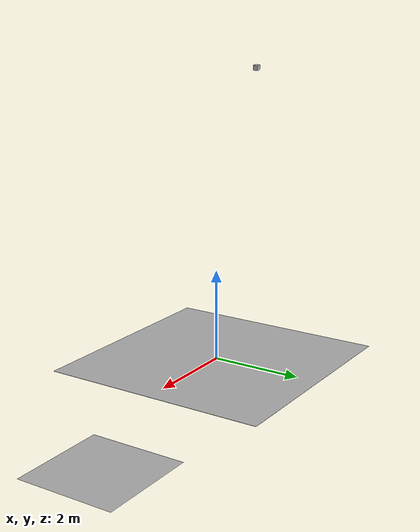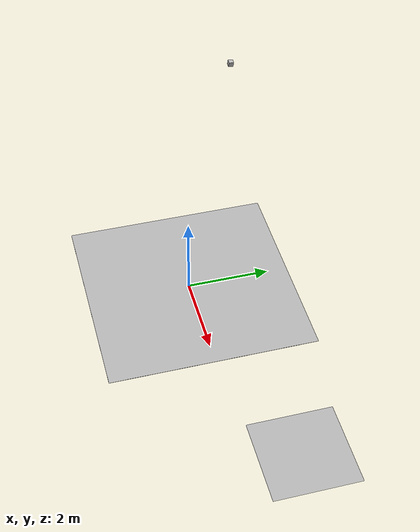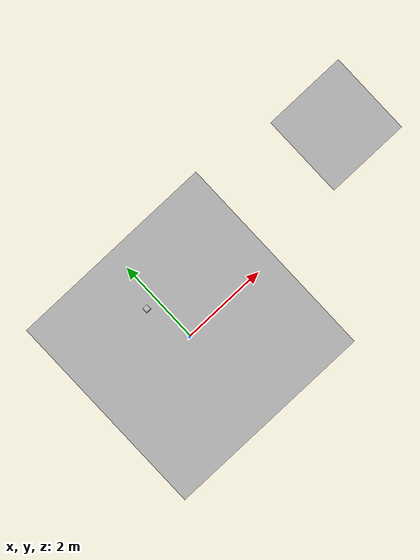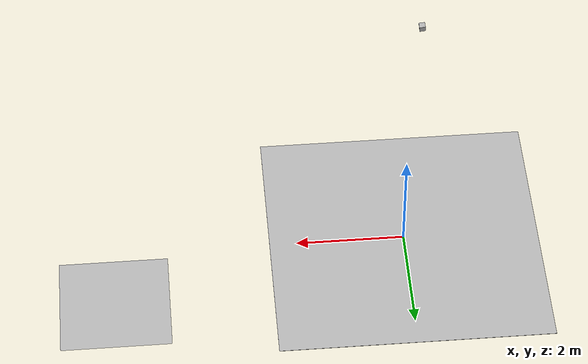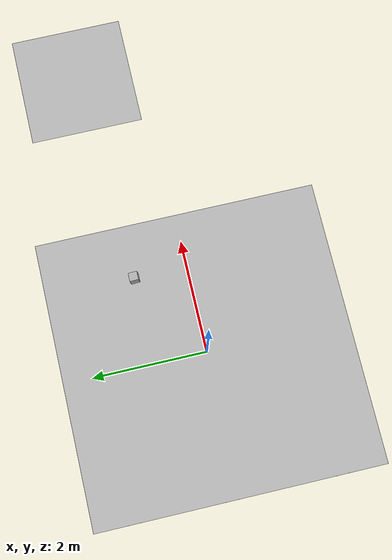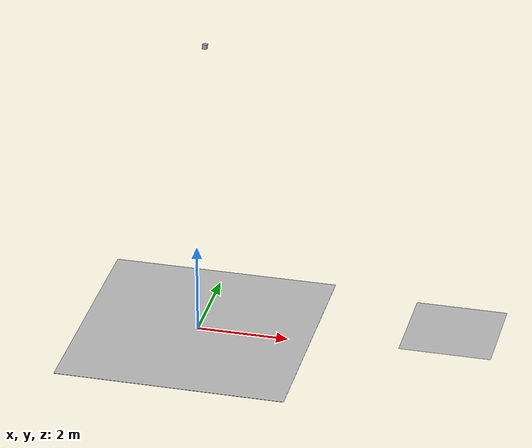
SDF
<sdf version="1.7">
 <world name="default">
  <light name="sun" type="directional">
   <pose>0 0 10 0 -0 0</pose>
   <diffuse>0.8 0.8 0.8 1</diffuse>
   <specular>0.2 0.2 0.2 1</specular>
   <attenuation>
    <range>1000</range>
    <constant>0.9</constant>
    <linear>0.01</linear>
    <quadratic>0.001</quadratic>
   </attenuation>
   <direction>-0.5 0.1 -0.9</direction>
   <spot><inner_angle>0</inner_angle><outer_angle>0</outer_angle><falloff>0</falloff></spot>
  </light>
  <gravity>0 0 -9.8</gravity>
  <magnetic_field>6e-06 2.3e-05 -4.2e-05</magnetic_field>
  <atmosphere type="adiabatic"/>
  <physics type="ode">
   <max_step_size>0.001</max_step_size>
   <real_time_factor>1</real_time_factor>
   <real_time_update_rate>1000</real_time_update_rate>
  </physics>
  <scene><ambient>0.4 0.4 0.4 1</ambient><background>0.7 0.7 0.7 1</background><shadows>1</shadows></scene>
  <spherical_coordinates>
   <surface_model>EARTH_WGS84</surface_model>
   <latitude_deg>0</latitude_deg>
   <longitude_deg>0</longitude_deg>
   <elevation>0</elevation>
   <heading_deg>0</heading_deg>
  </spherical_coordinates>
  <model name="checkerboard_plane">
   <static>1</static>
   <link name="link">
    <visual name="visual">
     <geometry><mesh><uri>model://checkerboard_plane/meshes/checkerboard_plane.dae</uri></mesh></geometry>
    </visual>
   </link>
   <pose>5.39797 1.17238 0 0 -0 0</pose>
  </model>
  <model name="aruco_marker">
   <pose>-0.001081 0.000637 0 0 -0 0</pose>
   <static>0</static>
   <link name="link">
    <gravity>0</gravity>
    <collision name="collision">
     <geometry>
      <plane><normal>0 0 0</normal><size>5 5</size></plane>
      <mesh><uri>model://aruco_marker/materials/textures/aruco.dae</uri></mesh>
     </geometry>
     <surface><friction><ode><mu>100</mu><mu2>50</mu2></ode></friction></surface>
    </collision>
    <visual name="visual">
     <cast_shadows>0</cast_shadows>
     <geometry>
      <plane><normal>0 0 0</normal><size>5 5</size></plane>
      <mesh><uri>model://aruco_marker/materials/textures/aruco.dae</uri></mesh>
     </geometry>
     <material>
      <script>
       <uri>model://aruco_marker/materials/scripts/</uri>
       <uri>model://aruco_marker/materials/textures/</uri>
       <name>ArucoMarker/Image</name>
       <emissive>1 1 1 1</emissive>
      </script>
     </material>
    </visual>
    <inertial>
     <inertia><ixx>1</ixx><ixy>0</ixy><ixz>0</ixz><iyy>1</iyy><iyz>0</iyz><izz>1</izz></inertia>
     <mass>1</mass>
    </inertial>
   </link>
  </model>
  <model name="camera">
   <pose>-0.010329 0.936185 6.3388 2.42681 1.41018 -2.27917</pose>
   <static>1</static>
   <link name="link">
    <gravity>0</gravity>
    <inertial>
     <mass>0.1</mass>
     <inertia><ixx>1.00017</ixx><iyy>1.00017</iyy><izz>1.00017</izz><ixy>0</ixy><ixz>0</ixz><iyz>0</iyz></inertia>
    </inertial>
    <collision name="collision"><geometry><box><size>0.1 0.1 0.1</size></box></geometry></collision>
    <visual name="visual"><geometry><box><size>0.1 0.1 0.1</size></box></geometry></visual>
    <sensor name="camera" type="camera">
     <camera>
      <horizontal_fov>1.047</horizontal_fov>
      <image><width>320</width><height>240</height></image>
      <clip><near>0.1</near><far>100</far></clip>
     </camera>
     <always_on>1</always_on>
     <update_rate>30</update_rate>
     <visualize>1</visualize>
     <plugin name="camera_controller" filename="libgazebo_ros_camera.so">
      <alwaysOn>1</alwaysOn>
      <updateRate>0.0</updateRate>
      <cameraName>free_camera</cameraName>
      <imageTopicName>/free_camera/image_raw</imageTopicName>
      <cameraInfoTopicName>/free_camera/camera_info</cameraInfoTopicName>
      <frameName>camera_link</frameName>
      <hackBaseline>0.07</hackBaseline>
      <distortionK1>0.0</distortionK1>
      <distortionK2>0.0</distortionK2>
      <distortionK3>0.0</distortionK3>
      <distortionT1>0.0</distortionT1>
      <distortionT2>0.0</distortionT2>
     </plugin>
    </sensor>
   </link>
  </model>
 </world>
</sdf>
